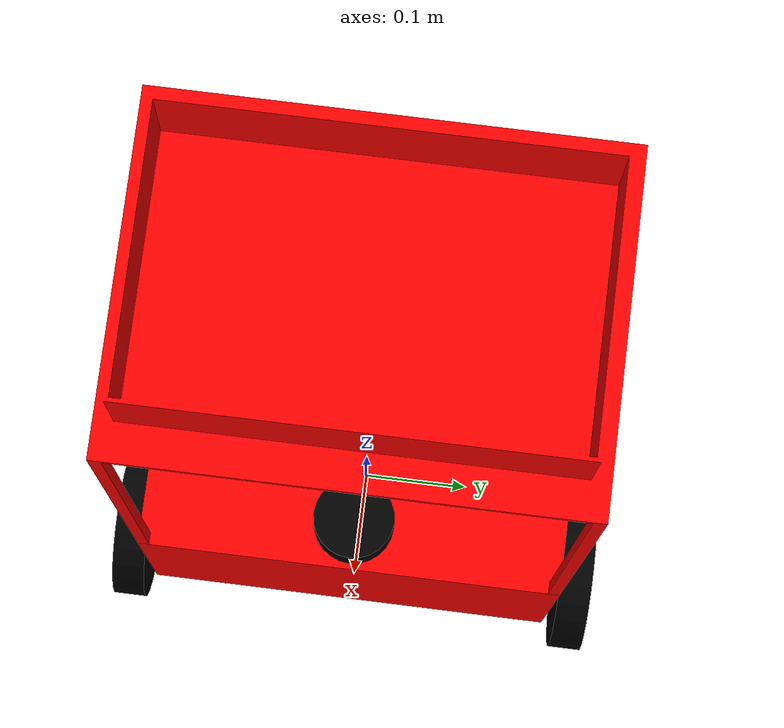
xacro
<?xml version="1.0"?>

<robot  xmlns:xacro= "http://www.ros.org/wiki/xacro"
    xmlns:sensor="http://playerstage.sourceforge.net/gazebo/xmlschema/#sensor"
    xmlns:controller="http://playerstage.sourceforge.net/gazebo/xmlschema/#controller"
    xmlns:interface="http://playerstage.sourceforge.net/gazebo/xmlschema/#interface"
    name="marrtino">

    <xacro:arg name="prefix" default="marrtino_"/>

    <xacro:include filename="$(find marrtino_description)/urdf/marrtino_robot.gazebo"/>

    <xacro:property name="M_PI" value="3.1415926535897931"/>

    <!-- Box Properties -->
    <xacro:property name="base_x_size" value="0.28"/>
    <xacro:property name="base_y_size" value="0.37"/>
    <xacro:property name="base_z_size" value="0.21"/>

    <!-- Wheel Properties -->
    <xacro:property name="wheel_radius" value="0.07"/>
  <xacro:property name="wheel_lenght" value="0.03"/>

  <xacro:property name="castor_radius" value="0.02"/>

    <xacro:macro name="default_inertia" params = "m">
            <inertia ixx="1.0" ixy = "0.0" ixz = "0.0"
                 iyy="1.0" iyz = "0.0" izz = "1.0" />
    </xacro:macro>

    <xacro:macro name="cylinder_inertia" params="m r h">
         <inertia  ixx="${m*(3*r*r+h*h)/12}" ixy = "0" ixz = "0"
                      iyy="${m*(3*r*r+h*h)/12}" iyz = "0"
                      izz="${m*r*r/2}" />
    </xacro:macro>

    <xacro:macro name="box_inertia" params="m x y z">
            <inertia  ixx="${m*(y*y+z*z)/12}" ixy = "0" ixz = "0"
                      iyy="${m*(x*x+z*z)/12}" iyz = "0"
                      izz="${m*(x*x+z*z)/12}" />
    </xacro:macro>

    <xacro:macro name="sphere_inertia" params="m r">
        <inertia  ixx="${2*m*r*r/5}" ixy = "0" ixz = "0"
                  iyy="${2*m*r*r/5}" iyz = "0"
                  izz="${2*m*r*r/5}" />
    </xacro:macro>

<!-- ..........................................Links definitions .....................................................-->

<link name="$(arg prefix)base_footprint" />

    <link name="$(arg prefix)base_link">
        <inertial>
            <origin xyz="0 0 ${base_z_size/2}" rpy = "0 0 0" />
            <mass value="5" />
            <xacro:box_inertia m="5" x="${base_x_size}" y="${base_y_size}" z="${base_z_size}"/>
        </inertial>

        <visual>
            <geometry>
                <box size="${base_x_size} ${base_y_size} ${base_z_size}"/>
            </geometry>
            <origin xyz="0 0 ${base_z_size/2}" rpy = "0 0 0" />
            <material name="red">
                <color rgba="1 0 0 1"/>
            </material>
        </visual>

        <collision>
            <geometry>
                <box size="${base_x_size} ${base_y_size} ${base_z_size}"/>
            </geometry>
            <origin xyz="0 0 ${base_z_size/2}" rpy = "0 0 0" />
        </collision>

        <visual>
            <geometry>
                <sphere radius="${castor_radius}"/> <!--length="0.03-->
            </geometry>
            <origin xyz="-0.10 0 -0.06" rpy="${M_PI/2} 0 0"/>
            <material name="black">
                <color rgba="0 0 0 1"/>
            </material>
        </visual>

        <collision>
            <geometry>
                <sphere radius="${castor_radius}"/>
            </geometry>
            <origin xyz="-0.10 0 -0.06" rpy="${M_PI/2} 0 0"/>
        </collision>
    </link>

    <link name="$(arg prefix)left_wheel_link">
        <visual>
            <geometry>
                <cylinder length="${wheel_lenght}" radius="${wheel_radius}"/>
            </geometry>
            <origin xyz="0 0 0" rpy="${M_PI/2} 0 0"/>
            <material name="black">
                <color rgba="0 0 0 1"/>
            </material>
        </visual>
        <collision>
            <geometry>
                <cylinder length="${wheel_lenght}" radius="${wheel_radius}"/>
            </geometry>
            <origin xyz="0 0 0" rpy="${M_PI/2} 0 0"/>
        </collision>
        <inertial>
            <origin xyz="0 0 0" rpy = "${M_PI/2} 0 0" />
            <mass value="1" />
            <xacro:cylinder_inertia m="1" r="${wheel_radius}" h="${wheel_lenght}" />
        </inertial>
    </link>

    <link name="$(arg prefix)right_wheel_link">
        <visual>
            <geometry>
                <cylinder length="${wheel_lenght}" radius="${wheel_radius}"/>
            </geometry>
            <origin xyz="0 0 0" rpy="${M_PI/2} 0 0"/>
            <material name="black">
                <color rgba="0 0 0 1"/>
            </material>
        </visual>
        <collision>
            <geometry>
                <cylinder length="${wheel_lenght}" radius="${wheel_radius}"/>
            </geometry>
            <origin xyz="0 0 0" rpy="${M_PI/2} 0 0"/>
        </collision>
        <inertial>
            <origin xyz="0 0 0" rpy = "${M_PI/2} 0 0" />
            <mass value="1" />
            <xacro:cylinder_inertia m="1" r="${wheel_radius}" h="${wheel_lenght}" />
        </inertial>
    </link>

    <link name="$(arg prefix)basket">
        <visual>
            <geometry>
                <mesh filename="package://marrtino_description/meshes/basket.stl" />
            </geometry>
            <origin xyz="0 0 0" rpy = "0 0 ${M_PI/2}"/>
            <material name="red">
                <color rgba="1 0 0 1"/>
            </material>
        </visual>
        <collision>
            <geometry>
                <mesh filename="package://marrtino_description/meshes/basket.stl" />
            </geometry>
            <origin xyz="0 0 0" rpy = "0 0 ${M_PI/2}"/>
        </collision>
    </link>

    <link name="$(arg prefix)laser_link" >
        <visual>
            <origin xyz="0 0 0" rpy="0 0 0"/>
            <geometry>
                <cylinder length="0.04" radius="0.035"/>
            </geometry>
            <material name="black">
                <color rgba="0 0 0 1"/>
            </material>
        </visual>

        <collision>
            <origin rpy="0 0 0" xyz="0 0 0"/>
            <geometry>
                <cylinder length="0.04" radius="0.035"/>
            </geometry>
        </collision>

        <inertial>
            <origin xyz="0 0 0" rpy = "0 0 0" />
            <mass value="0.1" />
            <xacro:cylinder_inertia m="0.1" r="0.035" h="0.04" />
        </inertial>
    </link>

<!-- ..........................................Joints definitions .....................................................-->

    <joint name="$(arg prefix)left_wheel_joint" type="continuous">
        <parent link="$(arg prefix)base_link" />
        <child link="$(arg prefix)left_wheel_link" />
        <origin xyz="0.09 0.21 -0.015" rpy="0 0 0"/>
        <axis xyz="0 1 0" />
        <joint_properties damping="0.0" friction="0.0"/>
    </joint>

    <joint name="$(arg prefix)right_wheel_joint" type="continuous">
        <parent link="$(arg prefix)base_link" />
        <child link="$(arg prefix)right_wheel_link" />
        <origin xyz="0.09 -0.21 -0.015" rpy="0 0 0"/>
        <axis xyz="0 1 0" />
        <joint_properties damping="0.0" friction="0.0"/>
    </joint>

    <joint name="$(arg prefix)basket_to_base_joint" type="fixed">
        <parent link="$(arg prefix)base_link" />
        <child link="$(arg prefix)basket" />
        <origin xyz="0.0 0.0 ${base_z_size+0.40}" rpy="0 0 0"/>
    </joint>

  <joint name="$(arg prefix)base_footprint_joint" type="fixed">
        <parent link="$(arg prefix)base_footprint" />
        <child link="$(arg prefix)base_link" />
        <origin xyz="0.0 0.0 ${wheel_radius + 0.04}" rpy="0 0 0"/>
        <axis xyz="0 1 0" />
    </joint>

    <!--  Laser joint -->
    <joint name="$(arg prefix)base_laser_joint" type="fixed">
        <parent link="$(arg prefix)base_link"/>
        <child link="$(arg prefix)laser_link"/>
        <origin xyz="0.10 0 ${base_z_size+0.015}" rpy="0 0 0"/>
        <axis xyz="0 1 0"/>
    </joint>

</robot>
